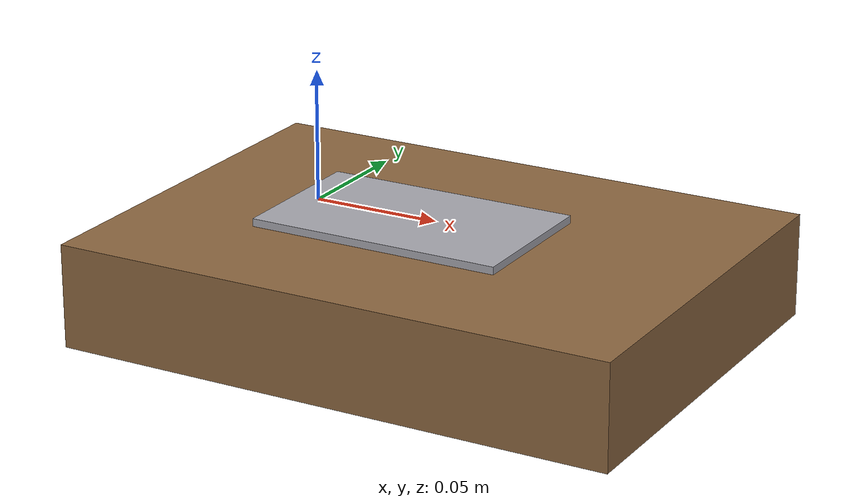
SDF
<?xml version="1.0"?>
<sdf version="1.6">
  <model name="lfd_workpiece">
    <static>true</static>

    <link name="link">

      <!-- 작업대(bench): 시편을 받치는 지지대.
           상면 z = 시편 하면(-0.003)에 맞춤. -->
      <collision name="bench_collision">
        <pose>0.05 0 -0.023 0 0 0</pose>
        <geometry>
          <box><size>0.22 0.16 0.04</size></box>
        </geometry>
      </collision>
      <visual name="bench_visual">
        <pose>0.05 0 -0.023 0 0 0</pose>
        <geometry>
          <box><size>0.22 0.16 0.04</size></box>
        </geometry>
        <material>
          <ambient>0.45 0.32 0.20 1</ambient>
          <diffuse>0.55 0.40 0.25 1</diffuse>
          <specular>0.1 0.1 0.1 1</specular>
        </material>
      </visual>

      <!-- 시편(specimen): 용접선이 그려질 판. 상면 z=0 = workpiece 원점
           높이. 앞쪽에 1cm 여유를 두고 용접선 시작점(x=0)이 오도록 배치. -->
      <collision name="specimen_collision">
        <pose>0.04 0 -0.0015 0 0 0</pose>
        <geometry>
          <box><size>0.10 0.06 0.003</size></box>
        </geometry>
      </collision>
      <visual name="specimen_visual">
        <pose>0.04 0 -0.0015 0 0 0</pose>
        <geometry>
          <box><size>0.10 0.06 0.003</size></box>
        </geometry>
        <material>
          <ambient>0.55 0.55 0.58 1</ambient>
          <diffuse>0.65 0.65 0.68 1</diffuse>
          <specular>0.3 0.3 0.3 1</specular>
        </material>
      </visual>

      <!-- 용접선 마커: x=[0, seam_length=0.04] 시각적 표시(충돌 없음).
           synth.py 기본 seam length 옵션값과 동일 길이. -->
      <visual name="seam_marker_visual">
        <pose>0.02 0 0.00025 0 0 0</pose>
        <geometry>
          <box><size>0.04 0.0015 0.0005</size></box>
        </geometry>
        <material>
          <ambient>0.05 0.05 0.05 1</ambient>
          <diffuse>0.05 0.05 0.05 1</diffuse>
        </material>
      </visual>

    </link>
  </model>
</sdf>
